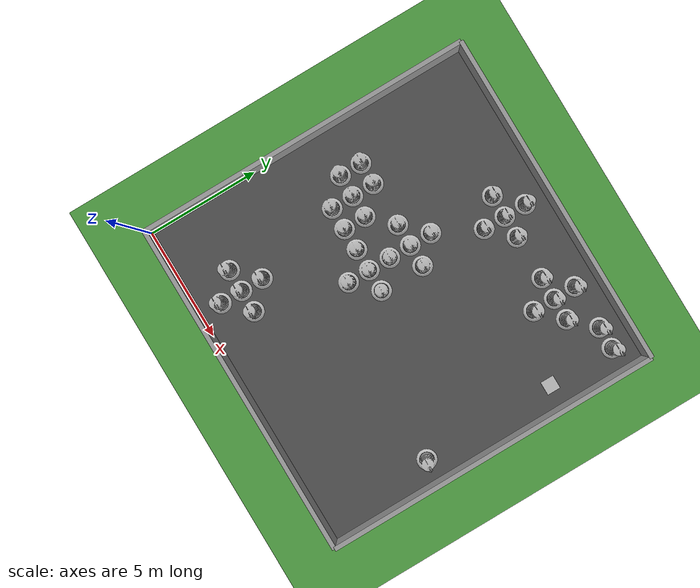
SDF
<sdf version="1.4">
 <world name="default">
  <model name="vrc_driving_terrain">
   <static>1</static>
   <link name="grass_plane">
    <visual name="visual_0">
     <cast_shadows>0</cast_shadows>
     <geometry><plane><normal>0 0 1</normal><size>150 150</size></plane></geometry>
     <material>
      <script>
       <uri>model://vrc_driving_terrain/materials/scripts</uri>
       <uri>model://vrc_driving_terrain/materials/textures</uri>
       <name>vrc/grass</name>
      </script>
     </material>
    </visual>
   </link>
   <pose>0 0 0.01 0 -0 0</pose>
  </model>
  <include><uri>model://ground_plane</uri></include>
  <include><uri>model://sun</uri></include>
  <plugin filename="librotors_gazebo_ros_interface_plugin.so" name="ros_interface_plugin"/>
  <spherical_coordinates>
   <surface_model>EARTH_WGS84</surface_model>
   <latitude_deg>47.3667</latitude_deg>
   <longitude_deg>8.5500</longitude_deg>
   <elevation>500.0</elevation>
   <heading_deg>0</heading_deg>
  </spherical_coordinates>
  <physics type="ode">
   <ode>
    <solver><type>quick</type><iters>1000</iters><sor>1.3</sor></solver>
    <constraints>
     <cfm>0</cfm>
     <erp>0.2</erp>
     <contact_max_correcting_vel>100</contact_max_correcting_vel>
     <contact_surface_layer>0.001</contact_surface_layer>
    </constraints>
   </ode>
   <max_step_size>0.01</max_step_size>
   <real_time_factor>1</real_time_factor>
   <real_time_update_rate>100</real_time_update_rate>
   <gravity>0 0 -9.8</gravity>
  </physics>
  <model name="box_target_green">
   <static>1</static>
   <link name="link">
    <pose>14 11 0 0 0 0</pose>
    <collision name="collision"><geometry><box><size>6 6 2</size></box></geometry></collision>
    <visual name="visual">
     <geometry>
      <mesh><uri>model://box_target_green/meshes/mesh.dae</uri><scale>0.1 0.1 0.1</scale></mesh>
     </geometry>
    </visual>
   </link>
  </model>
  <model name="grey_wall">
   <static>1</static>
   <link name="link">
    <visual name="visual">
     <cast_shadows>0</cast_shadows>
     <geometry><box><size>15 0.2 2</size></box></geometry>
     <material>
      <script>
       <uri>model://grey_wall/materials/scripts</uri>
       <uri>model://grey_wall/materials/textures</uri>
       <name>vrc/grey_wall</name>
      </script>
     </material>
    </visual>
   </link>
   <pose>7.5 0 0 0 0 0</pose>
  </model>
  <model name="grey_wall">
   <static>1</static>
   <link name="link">
    <visual name="visual">
     <cast_shadows>0</cast_shadows>
     <geometry><box><size>15 0.2 2</size></box></geometry>
     <material>
      <script>
       <uri>model://grey_wall/materials/scripts</uri>
       <uri>model://grey_wall/materials/textures</uri>
       <name>vrc/grey_wall</name>
      </script>
     </material>
    </visual>
   </link>
   <pose>0 7.5 0 0 0 1.57079632679</pose>
  </model>
  <model name="grey_wall">
   <static>1</static>
   <link name="link">
    <visual name="visual">
     <cast_shadows>0</cast_shadows>
     <geometry><box><size>15 0.2 2</size></box></geometry>
     <material>
      <script>
       <uri>model://grey_wall/materials/scripts</uri>
       <uri>model://grey_wall/materials/textures</uri>
       <name>vrc/grey_wall</name>
      </script>
     </material>
    </visual>
   </link>
   <pose>15 7.5 0 0 0 -1.57079632679</pose>
  </model>
  <model name="grey_wall">
   <static>1</static>
   <link name="link">
    <visual name="visual">
     <cast_shadows>0</cast_shadows>
     <geometry><box><size>15 0.2 2</size></box></geometry>
     <material>
      <script>
       <uri>model://grey_wall/materials/scripts</uri>
       <uri>model://grey_wall/materials/textures</uri>
       <name>vrc/grey_wall</name>
      </script>
     </material>
    </visual>
   </link>
   <pose>7.5 15 0 0 0 3.14159265359</pose>
  </model>
  <model name="asphalt_plane">
   <static>1</static>
   <link name="link">
    <visual name="visual">
     <cast_shadows>0</cast_shadows>
     <geometry><box><size>15 15 0.1</size></box></geometry>
     <material>
      <script>
       <uri>model://asphalt_plane/materials/scripts</uri>
       <uri>model://asphalt_plane/materials/textures</uri>
       <name>vrc/asphalt</name>
      </script>
     </material>
    </visual>
   </link>
   <pose>7.5 7.5 0 0 0 0</pose>
  </model>
  <model name="Construction Barrel">
   <link name="link">
    <collision name="collision">
     <geometry>
      <mesh><uri>model://construction_barrel/meshes/construction_barrel.dae</uri><scale>1 1 1</scale></mesh>
     </geometry>
    </collision>
    <visual name="visual">
     <geometry><mesh><uri>model://construction_barrel/meshes/construction_barrel.dae</uri></mesh></geometry>
    </visual>
   </link>
   <pose>2 8 0 0 0 0</pose>
   <static>1</static>
  </model>
  <model name="Construction Barrel">
   <link name="link">
    <collision name="collision">
     <geometry>
      <mesh><uri>model://construction_barrel/meshes/construction_barrel.dae</uri><scale>1 1 1</scale></mesh>
     </geometry>
    </collision>
    <visual name="visual">
     <geometry><mesh><uri>model://construction_barrel/meshes/construction_barrel.dae</uri></mesh></geometry>
    </visual>
   </link>
   <pose>2 9 0 0 0 0</pose>
   <static>1</static>
  </model>
  <model name="Construction Barrel">
   <link name="link">
    <collision name="collision">
     <geometry>
      <mesh><uri>model://construction_barrel/meshes/construction_barrel.dae</uri><scale>1 1 1</scale></mesh>
     </geometry>
    </collision>
    <visual name="visual">
     <geometry><mesh><uri>model://construction_barrel/meshes/construction_barrel.dae</uri></mesh></geometry>
    </visual>
   </link>
   <pose>3 2 0 0 0 0</pose>
   <static>1</static>
  </model>
  <model name="Construction Barrel">
   <link name="link">
    <collision name="collision">
     <geometry>
      <mesh><uri>model://construction_barrel/meshes/construction_barrel.dae</uri><scale>1 1 1</scale></mesh>
     </geometry>
    </collision>
    <visual name="visual">
     <geometry><mesh><uri>model://construction_barrel/meshes/construction_barrel.dae</uri></mesh></geometry>
    </visual>
   </link>
   <pose>3 7 0 0 0 0</pose>
   <static>1</static>
  </model>
  <model name="Construction Barrel">
   <link name="link">
    <collision name="collision">
     <geometry>
      <mesh><uri>model://construction_barrel/meshes/construction_barrel.dae</uri><scale>1 1 1</scale></mesh>
     </geometry>
    </collision>
    <visual name="visual">
     <geometry><mesh><uri>model://construction_barrel/meshes/construction_barrel.dae</uri></mesh></geometry>
    </visual>
   </link>
   <pose>3 8 0 0 0 0</pose>
   <static>1</static>
  </model>
  <model name="Construction Barrel">
   <link name="link">
    <collision name="collision">
     <geometry>
      <mesh><uri>model://construction_barrel/meshes/construction_barrel.dae</uri><scale>1 1 1</scale></mesh>
     </geometry>
    </collision>
    <visual name="visual">
     <geometry><mesh><uri>model://construction_barrel/meshes/construction_barrel.dae</uri></mesh></geometry>
    </visual>
   </link>
   <pose>3 9 0 0 0 0</pose>
   <static>1</static>
  </model>
  <model name="Construction Barrel">
   <link name="link">
    <collision name="collision">
     <geometry>
      <mesh><uri>model://construction_barrel/meshes/construction_barrel.dae</uri><scale>1 1 1</scale></mesh>
     </geometry>
    </collision>
    <visual name="visual">
     <geometry><mesh><uri>model://construction_barrel/meshes/construction_barrel.dae</uri></mesh></geometry>
    </visual>
   </link>
   <pose>4 1 0 0 0 0</pose>
   <static>1</static>
  </model>
  <model name="Construction Barrel">
   <link name="link">
    <collision name="collision">
     <geometry>
      <mesh><uri>model://construction_barrel/meshes/construction_barrel.dae</uri><scale>1 1 1</scale></mesh>
     </geometry>
    </collision>
    <visual name="visual">
     <geometry><mesh><uri>model://construction_barrel/meshes/construction_barrel.dae</uri></mesh></geometry>
    </visual>
   </link>
   <pose>4 2 0 0 0 0</pose>
   <static>1</static>
  </model>
  <model name="Construction Barrel">
   <link name="link">
    <collision name="collision">
     <geometry>
      <mesh><uri>model://construction_barrel/meshes/construction_barrel.dae</uri><scale>1 1 1</scale></mesh>
     </geometry>
    </collision>
    <visual name="visual">
     <geometry><mesh><uri>model://construction_barrel/meshes/construction_barrel.dae</uri></mesh></geometry>
    </visual>
   </link>
   <pose>4 3 0 0 0 0</pose>
   <static>1</static>
  </model>
  <model name="Construction Barrel">
   <link name="link">
    <collision name="collision">
     <geometry>
      <mesh><uri>model://construction_barrel/meshes/construction_barrel.dae</uri><scale>1 1 1</scale></mesh>
     </geometry>
    </collision>
    <visual name="visual">
     <geometry><mesh><uri>model://construction_barrel/meshes/construction_barrel.dae</uri></mesh></geometry>
    </visual>
   </link>
   <pose>4 7 0 0 0 0</pose>
   <static>1</static>
  </model>
  <model name="Construction Barrel">
   <link name="link">
    <collision name="collision">
     <geometry>
      <mesh><uri>model://construction_barrel/meshes/construction_barrel.dae</uri><scale>1 1 1</scale></mesh>
     </geometry>
    </collision>
    <visual name="visual">
     <geometry><mesh><uri>model://construction_barrel/meshes/construction_barrel.dae</uri></mesh></geometry>
    </visual>
   </link>
   <pose>4 8 0 0 0 0</pose>
   <static>1</static>
  </model>
  <model name="Construction Barrel">
   <link name="link">
    <collision name="collision">
     <geometry>
      <mesh><uri>model://construction_barrel/meshes/construction_barrel.dae</uri><scale>1 1 1</scale></mesh>
     </geometry>
    </collision>
    <visual name="visual">
     <geometry><mesh><uri>model://construction_barrel/meshes/construction_barrel.dae</uri></mesh></geometry>
    </visual>
   </link>
   <pose>5 2 0 0 0 0</pose>
   <static>1</static>
  </model>
  <model name="Construction Barrel">
   <link name="link">
    <collision name="collision">
     <geometry>
      <mesh><uri>model://construction_barrel/meshes/construction_barrel.dae</uri><scale>1 1 1</scale></mesh>
     </geometry>
    </collision>
    <visual name="visual">
     <geometry><mesh><uri>model://construction_barrel/meshes/construction_barrel.dae</uri></mesh></geometry>
    </visual>
   </link>
   <pose>5 7 0 0 0 0</pose>
   <static>1</static>
  </model>
  <model name="Construction Barrel">
   <link name="link">
    <collision name="collision">
     <geometry>
      <mesh><uri>model://construction_barrel/meshes/construction_barrel.dae</uri><scale>1 1 1</scale></mesh>
     </geometry>
    </collision>
    <visual name="visual">
     <geometry><mesh><uri>model://construction_barrel/meshes/construction_barrel.dae</uri></mesh></geometry>
    </visual>
   </link>
   <pose>5 9 0 0 0 0</pose>
   <static>1</static>
  </model>
  <model name="Construction Barrel">
   <link name="link">
    <collision name="collision">
     <geometry>
      <mesh><uri>model://construction_barrel/meshes/construction_barrel.dae</uri><scale>1 1 1</scale></mesh>
     </geometry>
    </collision>
    <visual name="visual">
     <geometry><mesh><uri>model://construction_barrel/meshes/construction_barrel.dae</uri></mesh></geometry>
    </visual>
   </link>
   <pose>6 6 0 0 0 0</pose>
   <static>1</static>
  </model>
  <model name="Construction Barrel">
   <link name="link">
    <collision name="collision">
     <geometry>
      <mesh><uri>model://construction_barrel/meshes/construction_barrel.dae</uri><scale>1 1 1</scale></mesh>
     </geometry>
    </collision>
    <visual name="visual">
     <geometry><mesh><uri>model://construction_barrel/meshes/construction_barrel.dae</uri></mesh></geometry>
    </visual>
   </link>
   <pose>6 7 0 0 0 0</pose>
   <static>1</static>
  </model>
  <model name="Construction Barrel">
   <link name="link">
    <collision name="collision">
     <geometry>
      <mesh><uri>model://construction_barrel/meshes/construction_barrel.dae</uri><scale>1 1 1</scale></mesh>
     </geometry>
    </collision>
    <visual name="visual">
     <geometry><mesh><uri>model://construction_barrel/meshes/construction_barrel.dae</uri></mesh></geometry>
    </visual>
   </link>
   <pose>6 8 0 0 0 0</pose>
   <static>1</static>
  </model>
  <model name="Construction Barrel">
   <link name="link">
    <collision name="collision">
     <geometry>
      <mesh><uri>model://construction_barrel/meshes/construction_barrel.dae</uri><scale>1 1 1</scale></mesh>
     </geometry>
    </collision>
    <visual name="visual">
     <geometry><mesh><uri>model://construction_barrel/meshes/construction_barrel.dae</uri></mesh></geometry>
    </visual>
   </link>
   <pose>6 9 0 0 0 0</pose>
   <static>1</static>
  </model>
  <model name="Construction Barrel">
   <link name="link">
    <collision name="collision">
     <geometry>
      <mesh><uri>model://construction_barrel/meshes/construction_barrel.dae</uri><scale>1 1 1</scale></mesh>
     </geometry>
    </collision>
    <visual name="visual">
     <geometry><mesh><uri>model://construction_barrel/meshes/construction_barrel.dae</uri></mesh></geometry>
    </visual>
   </link>
   <pose>6 10 0 0 0 0</pose>
   <static>1</static>
  </model>
  <model name="Construction Barrel">
   <link name="link">
    <collision name="collision">
     <geometry>
      <mesh><uri>model://construction_barrel/meshes/construction_barrel.dae</uri><scale>1 1 1</scale></mesh>
     </geometry>
    </collision>
    <visual name="visual">
     <geometry><mesh><uri>model://construction_barrel/meshes/construction_barrel.dae</uri></mesh></geometry>
    </visual>
   </link>
   <pose>6 13 0 0 0 0</pose>
   <static>1</static>
  </model>
  <model name="Construction Barrel">
   <link name="link">
    <collision name="collision">
     <geometry>
      <mesh><uri>model://construction_barrel/meshes/construction_barrel.dae</uri><scale>1 1 1</scale></mesh>
     </geometry>
    </collision>
    <visual name="visual">
     <geometry><mesh><uri>model://construction_barrel/meshes/construction_barrel.dae</uri></mesh></geometry>
    </visual>
   </link>
   <pose>7 7 0 0 0 0</pose>
   <static>1</static>
  </model>
  <model name="Construction Barrel">
   <link name="link">
    <collision name="collision">
     <geometry>
      <mesh><uri>model://construction_barrel/meshes/construction_barrel.dae</uri><scale>1 1 1</scale></mesh>
     </geometry>
    </collision>
    <visual name="visual">
     <geometry><mesh><uri>model://construction_barrel/meshes/construction_barrel.dae</uri></mesh></geometry>
    </visual>
   </link>
   <pose>7 9 0 0 0 0</pose>
   <static>1</static>
  </model>
  <model name="Construction Barrel">
   <link name="link">
    <collision name="collision">
     <geometry>
      <mesh><uri>model://construction_barrel/meshes/construction_barrel.dae</uri><scale>1 1 1</scale></mesh>
     </geometry>
    </collision>
    <visual name="visual">
     <geometry><mesh><uri>model://construction_barrel/meshes/construction_barrel.dae</uri></mesh></geometry>
    </visual>
   </link>
   <pose>7 12 0 0 0 0</pose>
   <static>1</static>
  </model>
  <model name="Construction Barrel">
   <link name="link">
    <collision name="collision">
     <geometry>
      <mesh><uri>model://construction_barrel/meshes/construction_barrel.dae</uri><scale>1 1 1</scale></mesh>
     </geometry>
    </collision>
    <visual name="visual">
     <geometry><mesh><uri>model://construction_barrel/meshes/construction_barrel.dae</uri></mesh></geometry>
    </visual>
   </link>
   <pose>7 13 0 0 0 0</pose>
   <static>1</static>
  </model>
  <model name="Construction Barrel">
   <link name="link">
    <collision name="collision">
     <geometry>
      <mesh><uri>model://construction_barrel/meshes/construction_barrel.dae</uri><scale>1 1 1</scale></mesh>
     </geometry>
    </collision>
    <visual name="visual">
     <geometry><mesh><uri>model://construction_barrel/meshes/construction_barrel.dae</uri></mesh></geometry>
    </visual>
   </link>
   <pose>7 14 0 0 0 0</pose>
   <static>1</static>
  </model>
  <model name="Construction Barrel">
   <link name="link">
    <collision name="collision">
     <geometry>
      <mesh><uri>model://construction_barrel/meshes/construction_barrel.dae</uri><scale>1 1 1</scale></mesh>
     </geometry>
    </collision>
    <visual name="visual">
     <geometry><mesh><uri>model://construction_barrel/meshes/construction_barrel.dae</uri></mesh></geometry>
    </visual>
   </link>
   <pose>8 13 0 0 0 0</pose>
   <static>1</static>
  </model>
  <model name="Construction Barrel">
   <link name="link">
    <collision name="collision">
     <geometry>
      <mesh><uri>model://construction_barrel/meshes/construction_barrel.dae</uri><scale>1 1 1</scale></mesh>
     </geometry>
    </collision>
    <visual name="visual">
     <geometry><mesh><uri>model://construction_barrel/meshes/construction_barrel.dae</uri></mesh></geometry>
    </visual>
   </link>
   <pose>10 13 0 0 0 0</pose>
   <static>1</static>
  </model>
  <model name="Construction Barrel">
   <link name="link">
    <collision name="collision">
     <geometry>
      <mesh><uri>model://construction_barrel/meshes/construction_barrel.dae</uri><scale>1 1 1</scale></mesh>
     </geometry>
    </collision>
    <visual name="visual">
     <geometry><mesh><uri>model://construction_barrel/meshes/construction_barrel.dae</uri></mesh></geometry>
    </visual>
   </link>
   <pose>11 12 0 0 0 0</pose>
   <static>1</static>
  </model>
  <model name="Construction Barrel">
   <link name="link">
    <collision name="collision">
     <geometry>
      <mesh><uri>model://construction_barrel/meshes/construction_barrel.dae</uri><scale>1 1 1</scale></mesh>
     </geometry>
    </collision>
    <visual name="visual">
     <geometry><mesh><uri>model://construction_barrel/meshes/construction_barrel.dae</uri></mesh></geometry>
    </visual>
   </link>
   <pose>11 13 0 0 0 0</pose>
   <static>1</static>
  </model>
  <model name="Construction Barrel">
   <link name="link">
    <collision name="collision">
     <geometry>
      <mesh><uri>model://construction_barrel/meshes/construction_barrel.dae</uri><scale>1 1 1</scale></mesh>
     </geometry>
    </collision>
    <visual name="visual">
     <geometry><mesh><uri>model://construction_barrel/meshes/construction_barrel.dae</uri></mesh></geometry>
    </visual>
   </link>
   <pose>11 14 0 0 0 0</pose>
   <static>1</static>
  </model>
  <model name="Construction Barrel">
   <link name="link">
    <collision name="collision">
     <geometry>
      <mesh><uri>model://construction_barrel/meshes/construction_barrel.dae</uri><scale>1 1 1</scale></mesh>
     </geometry>
    </collision>
    <visual name="visual">
     <geometry><mesh><uri>model://construction_barrel/meshes/construction_barrel.dae</uri></mesh></geometry>
    </visual>
   </link>
   <pose>12 13 0 0 0 0</pose>
   <static>1</static>
  </model>
  <model name="Construction Barrel">
   <link name="link">
    <collision name="collision">
     <geometry>
      <mesh><uri>model://construction_barrel/meshes/construction_barrel.dae</uri><scale>1 1 1</scale></mesh>
     </geometry>
    </collision>
    <visual name="visual">
     <geometry><mesh><uri>model://construction_barrel/meshes/construction_barrel.dae</uri></mesh></geometry>
    </visual>
   </link>
   <pose>13 14 0 0 0 0</pose>
   <static>1</static>
  </model>
  <model name="Construction Barrel">
   <link name="link">
    <collision name="collision">
     <geometry>
      <mesh><uri>model://construction_barrel/meshes/construction_barrel.dae</uri><scale>1 1 1</scale></mesh>
     </geometry>
    </collision>
    <visual name="visual">
     <geometry><mesh><uri>model://construction_barrel/meshes/construction_barrel.dae</uri></mesh></geometry>
    </visual>
   </link>
   <pose>14 5 0 0 0 0</pose>
   <static>1</static>
  </model>
  <model name="Construction Barrel">
   <link name="link">
    <collision name="collision">
     <geometry>
      <mesh><uri>model://construction_barrel/meshes/construction_barrel.dae</uri><scale>1 1 1</scale></mesh>
     </geometry>
    </collision>
    <visual name="visual">
     <geometry><mesh><uri>model://construction_barrel/meshes/construction_barrel.dae</uri></mesh></geometry>
    </visual>
   </link>
   <pose>14 14 0 0 0 0</pose>
   <static>1</static>
  </model>
 </world>
</sdf>
